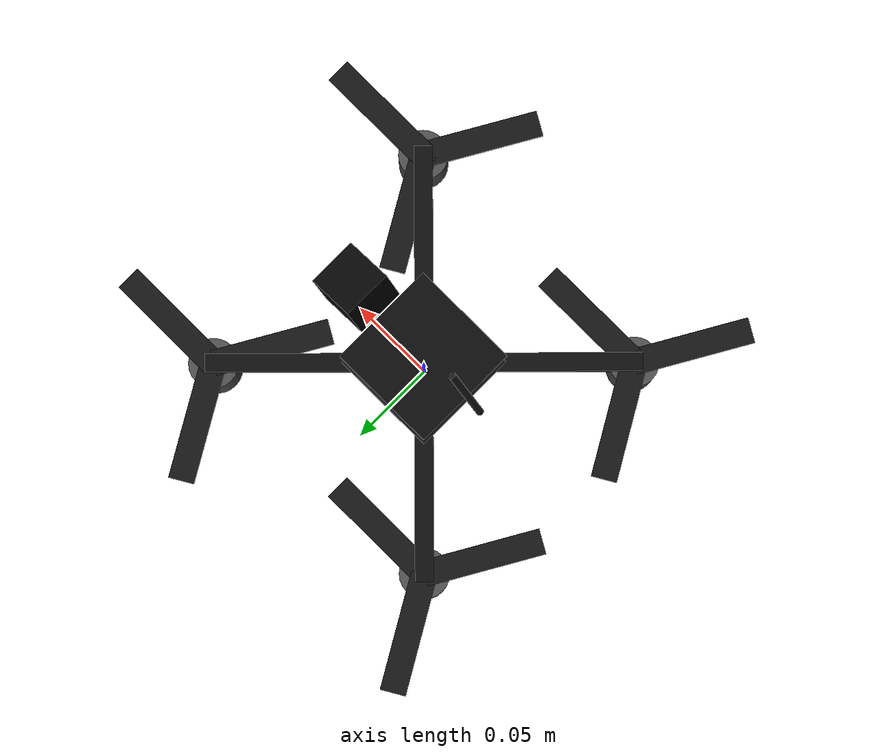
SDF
<?xml version="1.0" encoding="UTF-8"?>
<sdf version='1.9'>
  <model name='fpv5'>
    <pose>0 0 0.05000 0 0 0</pose>
    <self_collide>false</self_collide>
    <static>false</static>
    <link name="base_link">
      <inertial>
        <mass>0.172000</mass>
        <inertia>
          <ixx>3.321e-04</ixx>
          <ixy>0</ixy>
          <ixz>0</ixz>
          <iyy>3.321e-04</iyy>
          <iyz>0</iyz>
          <izz>6.348e-04</izz>
        </inertia>
      </inertial>
      <gravity>true</gravity>
      <velocity_decay/>

      <visual name="arm0">
        <pose>0.03977 -0.03977 0.00000 0.00000 0.00000 -0.78540</pose>
        <geometry>
          <box><size>0.12150 0.01000 0.00500</size></box>
        </geometry>
        <material><ambient>0.02 0.02 0.02 1</ambient><diffuse>0.05 0.05 0.05 1</diffuse></material>
      </visual>
      <collision name="arm0_collision">
        <pose>0.03977 -0.03977 0.00000 0.00000 0.00000 -0.78540</pose>
        <geometry>
          <box><size>0.12150 0.01000 0.00500</size></box>
        </geometry>
      </collision>
      <visual name="arm1">
        <pose>-0.03977 0.03977 0.00000 0.00000 0.00000 2.35619</pose>
        <geometry>
          <box><size>0.12150 0.01000 0.00500</size></box>
        </geometry>
        <material><ambient>0.02 0.02 0.02 1</ambient><diffuse>0.05 0.05 0.05 1</diffuse></material>
      </visual>
      <collision name="arm1_collision">
        <pose>-0.03977 0.03977 0.00000 0.00000 0.00000 2.35619</pose>
        <geometry>
          <box><size>0.12150 0.01000 0.00500</size></box>
        </geometry>
      </collision>
      <visual name="arm2">
        <pose>0.03977 0.03977 0.00000 0.00000 0.00000 0.78540</pose>
        <geometry>
          <box><size>0.12150 0.01000 0.00500</size></box>
        </geometry>
        <material><ambient>0.02 0.02 0.02 1</ambient><diffuse>0.05 0.05 0.05 1</diffuse></material>
      </visual>
      <collision name="arm2_collision">
        <pose>0.03977 0.03977 0.00000 0.00000 0.00000 0.78540</pose>
        <geometry>
          <box><size>0.12150 0.01000 0.00500</size></box>
        </geometry>
      </collision>
      <visual name="arm3">
        <pose>-0.03977 -0.03977 0.00000 0.00000 0.00000 -2.35619</pose>
        <geometry>
          <box><size>0.12150 0.01000 0.00500</size></box>
        </geometry>
        <material><ambient>0.02 0.02 0.02 1</ambient><diffuse>0.05 0.05 0.05 1</diffuse></material>
      </visual>
      <collision name="arm3_collision">
        <pose>-0.03977 -0.03977 0.00000 0.00000 0.00000 -2.35619</pose>
        <geometry>
          <box><size>0.12150 0.01000 0.00500</size></box>
        </geometry>
      </collision>

      <visual name="standoff_0">
        <pose>0.02400 0.02400 0.01750 0.00000 0.00000 0.00000</pose>
        <geometry>
          <cylinder><radius>0.00250</radius><length>0.02900</length></cylinder>
        </geometry>
        <material><ambient>0.6 0.6 0.6 1</ambient><diffuse>0.7 0.7 0.7 1</diffuse></material>
      </visual>
      <visual name="standoff_1">
        <pose>0.02400 -0.02400 0.01750 0.00000 0.00000 0.00000</pose>
        <geometry>
          <cylinder><radius>0.00250</radius><length>0.02900</length></cylinder>
        </geometry>
        <material><ambient>0.6 0.6 0.6 1</ambient><diffuse>0.7 0.7 0.7 1</diffuse></material>
      </visual>
      <visual name="standoff_2">
        <pose>-0.02400 0.02400 0.01750 0.00000 0.00000 0.00000</pose>
        <geometry>
          <cylinder><radius>0.00250</radius><length>0.02900</length></cylinder>
        </geometry>
        <material><ambient>0.6 0.6 0.6 1</ambient><diffuse>0.7 0.7 0.7 1</diffuse></material>
      </visual>
      <visual name="standoff_3">
        <pose>-0.02400 -0.02400 0.01750 0.00000 0.00000 0.00000</pose>
        <geometry>
          <cylinder><radius>0.00250</radius><length>0.02900</length></cylinder>
        </geometry>
        <material><ambient>0.6 0.6 0.6 1</ambient><diffuse>0.7 0.7 0.7 1</diffuse></material>
      </visual>
      <visual name="bottom_plate">
        <pose>0.00000 0.00000 0.00150 0.00000 0.00000 0.00000</pose>
        <geometry>
          <box><size>0.06200 0.06200 0.00300</size></box>
        </geometry>
        <material><ambient>0.02 0.02 0.02 1</ambient><diffuse>0.04 0.04 0.04 1</diffuse></material>
      </visual>
      <visual name="top_plate">
        <pose>0.00000 0.00000 0.03200 0.00000 0.00000 0.00000</pose>
        <geometry>
          <box><size>0.06200 0.06200 0.00300</size></box>
        </geometry>
        <material><ambient>0.02 0.02 0.02 1</ambient><diffuse>0.04 0.04 0.04 1</diffuse></material>
      </visual>
      <visual name="camera_pod">
        <pose>0.04900 0.00000 0.04500 0.00000 0.34907 0.00000</pose>
        <geometry>
          <box><size>0.02800 0.02800 0.02600</size></box>
        </geometry>
        <material><ambient>0.02 0.02 0.02 1</ambient><diffuse>0.02 0.02 0.02 1</diffuse></material>
      </visual>
      <visual name="vtx_antenna">
        <pose>-0.03100 0.00000 0.05700 0.00000 0.43633 0.00000</pose>
        <geometry>
          <cylinder><radius>0.00200</radius><length>0.05000</length></cylinder>
        </geometry>
        <material><ambient>0.05 0.05 0.05 1</ambient><diffuse>0.1 0.1 0.1 1</diffuse></material>
      </visual>
      <collision name="stack_collision">
        <pose>0.00000 0.00000 0.01600 0.00000 0.00000 0.00000</pose>
        <geometry>
          <box><size>0.06200 0.06200 0.03200</size></box>
        </geometry>
        <surface>
          <contact><ode><min_depth>0.001</min_depth><max_vel>0</max_vel></ode></contact>
          <friction><ode/></friction>
        </surface>
      </collision>
      <sensor name="air_pressure_sensor" type="air_pressure">
        <always_on>1</always_on>
        <update_rate>50</update_rate>
        <air_pressure><pressure><noise type="gaussian"><mean>0</mean><stddev>0.01</stddev></noise></pressure></air_pressure>
      </sensor>
      <sensor name="imu_sensor" type="imu">
        <always_on>1</always_on>
        <update_rate>250</update_rate>
        <imu>
          <angular_velocity>
            <x><noise type="gaussian"><mean>0</mean><stddev>0.00018665</stddev><dynamic_bias_stddev>3.8785e-05</dynamic_bias_stddev><dynamic_bias_correlation_time>1000</dynamic_bias_correlation_time></noise></x>
            <y><noise type="gaussian"><mean>0</mean><stddev>0.00018665</stddev><dynamic_bias_stddev>3.8785e-05</dynamic_bias_stddev><dynamic_bias_correlation_time>1000</dynamic_bias_correlation_time></noise></y>
            <z><noise type="gaussian"><mean>0</mean><stddev>0.00018665</stddev><dynamic_bias_stddev>3.8785e-05</dynamic_bias_stddev><dynamic_bias_correlation_time>1000</dynamic_bias_correlation_time></noise></z>
          </angular_velocity>
          <linear_acceleration>
            <x><noise type="gaussian"><mean>0</mean><stddev>0.00186</stddev><dynamic_bias_stddev>0.006</dynamic_bias_stddev><dynamic_bias_correlation_time>300</dynamic_bias_correlation_time></noise></x>
            <y><noise type="gaussian"><mean>0</mean><stddev>0.00186</stddev><dynamic_bias_stddev>0.006</dynamic_bias_stddev><dynamic_bias_correlation_time>300</dynamic_bias_correlation_time></noise></y>
            <z><noise type="gaussian"><mean>0</mean><stddev>0.00186</stddev><dynamic_bias_stddev>0.006</dynamic_bias_stddev><dynamic_bias_correlation_time>300</dynamic_bias_correlation_time></noise></z>
          </linear_acceleration>
        </imu>
      </sensor>
      <sensor name="navsat_sensor" type="navsat">
        <always_on>1</always_on>
        <update_rate>30</update_rate>
      </sensor>
      <sensor name="camera" type="camera">
        <pose>0.04900 0.00000 0.04500 0.00000 0.34907 0.00000</pose>
        <camera>
          <horizontal_fov>1.57080</horizontal_fov>
          <image><width>640</width><height>480</height></image>
          <clip><near>0.05</near><far>100</far></clip>
        </camera>
        <always_on>1</always_on>
        <update_rate>30</update_rate>
        <visualize>true</visualize>
        <topic>camera</topic>
      </sensor>
      <sensor name="depth_camera" type="depth_camera">
        <pose>0.04900 0.00000 0.04500 0.00000 0.34907 0.00000</pose>
        <camera>
          <horizontal_fov>1.57080</horizontal_fov>
          <image><width>640</width><height>480</height><format>R_FLOAT32</format></image>
          <clip><near>0.1</near><far>20.0</far></clip>
        </camera>
        <always_on>1</always_on>
        <update_rate>30</update_rate>
        <visualize>false</visualize>
        <topic>depth_camera</topic>
      </sensor>
      <sensor name="segmentation_camera" type="segmentation">
        <pose>0.04900 0.00000 0.04500 0.00000 0.34907 0.00000</pose>
        <camera>
          <segmentation_type>semantic</segmentation_type>
          <horizontal_fov>1.57080</horizontal_fov>
          <image><width>640</width><height>480</height></image>
          <clip><near>0.05</near><far>100</far></clip>
        </camera>
        <always_on>1</always_on>
        <update_rate>30</update_rate>
        <visualize>false</visualize>
        <topic>semantic_segmentation</topic>
      </sensor>
    </link>

    <link name="rotor_0">
      <gravity>true</gravity>
      <self_collide>false</self_collide>
      <velocity_decay/>
      <pose>0.07955 -0.07955 0.00000 0.00000 0.00000 0.00000</pose>
      <inertial>
        <mass>0.032000</mass>
        <inertia>
          <ixx>4.507e-05</ixx>
          <iyy>4.507e-05</iyy>
          <izz>6.760e-05</izz>
        </inertia>
      </inertial>
      <visual name="rotor_0_motor">
        <pose>0 0 -0.01500 0 0 0</pose>
        <geometry>
          <cylinder><radius>0.01350</radius><length>0.03000</length></cylinder>
        </geometry>
        <material>
          <ambient>0.15 0.15 0.15 1</ambient>
          <diffuse>0.3 0.3 0.3 1</diffuse>
          <specular>0.6 0.6 0.6 1</specular>
        </material>
      </visual>

      <visual name="rotor_0_blade0">
        <pose>0.03250 0.00000 0.00000 0.00000 0.00000 0.00000</pose>
        <geometry>
          <box><size>0.06500 0.01400 0.00180</size></box>
        </geometry>
        <material><ambient>0.05 0.05 0.05 1</ambient><diffuse>0.08 0.08 0.08 1</diffuse></material>
      </visual>
      <visual name="rotor_0_blade1">
        <pose>-0.01625 0.02815 0.00000 0.00000 0.00000 2.09440</pose>
        <geometry>
          <box><size>0.06500 0.01400 0.00180</size></box>
        </geometry>
        <material><ambient>0.05 0.05 0.05 1</ambient><diffuse>0.08 0.08 0.08 1</diffuse></material>
      </visual>
      <visual name="rotor_0_blade2">
        <pose>-0.01625 -0.02815 0.00000 0.00000 0.00000 4.18879</pose>
        <geometry>
          <box><size>0.06500 0.01400 0.00180</size></box>
        </geometry>
        <material><ambient>0.05 0.05 0.05 1</ambient><diffuse>0.08 0.08 0.08 1</diffuse></material>
      </visual>
      <collision name="rotor_0_collision">
        <pose>0 0 0 0 0 0</pose>
        <geometry>
          <box><size>0.13000 0.02800 0.00360</size></box>
        </geometry>
      </collision>
    </link>
    <joint name="rotor_0_joint" type="revolute">
      <parent>base_link</parent>
      <child>rotor_0</child>
      <axis>
        <xyz>0 0 1</xyz>
        <limit><lower>-1e+16</lower><upper>1e+16</upper></limit>
        <dynamics><spring_reference>0</spring_reference><spring_stiffness>0</spring_stiffness></dynamics>
      </axis>
    </joint>
    <link name="rotor_1">
      <gravity>true</gravity>
      <self_collide>false</self_collide>
      <velocity_decay/>
      <pose>-0.07955 0.07955 0.00000 0.00000 0.00000 0.00000</pose>
      <inertial>
        <mass>0.032000</mass>
        <inertia>
          <ixx>4.507e-05</ixx>
          <iyy>4.507e-05</iyy>
          <izz>6.760e-05</izz>
        </inertia>
      </inertial>
      <visual name="rotor_1_motor">
        <pose>0 0 -0.01500 0 0 0</pose>
        <geometry>
          <cylinder><radius>0.01350</radius><length>0.03000</length></cylinder>
        </geometry>
        <material>
          <ambient>0.15 0.15 0.15 1</ambient>
          <diffuse>0.3 0.3 0.3 1</diffuse>
          <specular>0.6 0.6 0.6 1</specular>
        </material>
      </visual>

      <visual name="rotor_1_blade0">
        <pose>0.03250 0.00000 0.00000 0.00000 0.00000 0.00000</pose>
        <geometry>
          <box><size>0.06500 0.01400 0.00180</size></box>
        </geometry>
        <material><ambient>0.05 0.05 0.05 1</ambient><diffuse>0.08 0.08 0.08 1</diffuse></material>
      </visual>
      <visual name="rotor_1_blade1">
        <pose>-0.01625 0.02815 0.00000 0.00000 0.00000 2.09440</pose>
        <geometry>
          <box><size>0.06500 0.01400 0.00180</size></box>
        </geometry>
        <material><ambient>0.05 0.05 0.05 1</ambient><diffuse>0.08 0.08 0.08 1</diffuse></material>
      </visual>
      <visual name="rotor_1_blade2">
        <pose>-0.01625 -0.02815 0.00000 0.00000 0.00000 4.18879</pose>
        <geometry>
          <box><size>0.06500 0.01400 0.00180</size></box>
        </geometry>
        <material><ambient>0.05 0.05 0.05 1</ambient><diffuse>0.08 0.08 0.08 1</diffuse></material>
      </visual>
      <collision name="rotor_1_collision">
        <pose>0 0 0 0 0 0</pose>
        <geometry>
          <box><size>0.13000 0.02800 0.00360</size></box>
        </geometry>
      </collision>
    </link>
    <joint name="rotor_1_joint" type="revolute">
      <parent>base_link</parent>
      <child>rotor_1</child>
      <axis>
        <xyz>0 0 1</xyz>
        <limit><lower>-1e+16</lower><upper>1e+16</upper></limit>
        <dynamics><spring_reference>0</spring_reference><spring_stiffness>0</spring_stiffness></dynamics>
      </axis>
    </joint>
    <link name="rotor_2">
      <gravity>true</gravity>
      <self_collide>false</self_collide>
      <velocity_decay/>
      <pose>0.07955 0.07955 0.00000 0.00000 0.00000 0.00000</pose>
      <inertial>
        <mass>0.032000</mass>
        <inertia>
          <ixx>4.507e-05</ixx>
          <iyy>4.507e-05</iyy>
          <izz>6.760e-05</izz>
        </inertia>
      </inertial>
      <visual name="rotor_2_motor">
        <pose>0 0 -0.01500 0 0 0</pose>
        <geometry>
          <cylinder><radius>0.01350</radius><length>0.03000</length></cylinder>
        </geometry>
        <material>
          <ambient>0.15 0.15 0.15 1</ambient>
          <diffuse>0.3 0.3 0.3 1</diffuse>
          <specular>0.6 0.6 0.6 1</specular>
        </material>
      </visual>

      <visual name="rotor_2_blade0">
        <pose>0.03250 0.00000 0.00000 0.00000 0.00000 0.00000</pose>
        <geometry>
          <box><size>0.06500 0.01400 0.00180</size></box>
        </geometry>
        <material><ambient>0.05 0.05 0.05 1</ambient><diffuse>0.08 0.08 0.08 1</diffuse></material>
      </visual>
      <visual name="rotor_2_blade1">
        <pose>-0.01625 0.02815 0.00000 0.00000 0.00000 2.09440</pose>
        <geometry>
          <box><size>0.06500 0.01400 0.00180</size></box>
        </geometry>
        <material><ambient>0.05 0.05 0.05 1</ambient><diffuse>0.08 0.08 0.08 1</diffuse></material>
      </visual>
      <visual name="rotor_2_blade2">
        <pose>-0.01625 -0.02815 0.00000 0.00000 0.00000 4.18879</pose>
        <geometry>
          <box><size>0.06500 0.01400 0.00180</size></box>
        </geometry>
        <material><ambient>0.05 0.05 0.05 1</ambient><diffuse>0.08 0.08 0.08 1</diffuse></material>
      </visual>
      <collision name="rotor_2_collision">
        <pose>0 0 0 0 0 0</pose>
        <geometry>
          <box><size>0.13000 0.02800 0.00360</size></box>
        </geometry>
      </collision>
    </link>
    <joint name="rotor_2_joint" type="revolute">
      <parent>base_link</parent>
      <child>rotor_2</child>
      <axis>
        <xyz>0 0 1</xyz>
        <limit><lower>-1e+16</lower><upper>1e+16</upper></limit>
        <dynamics><spring_reference>0</spring_reference><spring_stiffness>0</spring_stiffness></dynamics>
      </axis>
    </joint>
    <link name="rotor_3">
      <gravity>true</gravity>
      <self_collide>false</self_collide>
      <velocity_decay/>
      <pose>-0.07955 -0.07955 0.00000 0.00000 0.00000 0.00000</pose>
      <inertial>
        <mass>0.032000</mass>
        <inertia>
          <ixx>4.507e-05</ixx>
          <iyy>4.507e-05</iyy>
          <izz>6.760e-05</izz>
        </inertia>
      </inertial>
      <visual name="rotor_3_motor">
        <pose>0 0 -0.01500 0 0 0</pose>
        <geometry>
          <cylinder><radius>0.01350</radius><length>0.03000</length></cylinder>
        </geometry>
        <material>
          <ambient>0.15 0.15 0.15 1</ambient>
          <diffuse>0.3 0.3 0.3 1</diffuse>
          <specular>0.6 0.6 0.6 1</specular>
        </material>
      </visual>

      <visual name="rotor_3_blade0">
        <pose>0.03250 0.00000 0.00000 0.00000 0.00000 0.00000</pose>
        <geometry>
          <box><size>0.06500 0.01400 0.00180</size></box>
        </geometry>
        <material><ambient>0.05 0.05 0.05 1</ambient><diffuse>0.08 0.08 0.08 1</diffuse></material>
      </visual>
      <visual name="rotor_3_blade1">
        <pose>-0.01625 0.02815 0.00000 0.00000 0.00000 2.09440</pose>
        <geometry>
          <box><size>0.06500 0.01400 0.00180</size></box>
        </geometry>
        <material><ambient>0.05 0.05 0.05 1</ambient><diffuse>0.08 0.08 0.08 1</diffuse></material>
      </visual>
      <visual name="rotor_3_blade2">
        <pose>-0.01625 -0.02815 0.00000 0.00000 0.00000 4.18879</pose>
        <geometry>
          <box><size>0.06500 0.01400 0.00180</size></box>
        </geometry>
        <material><ambient>0.05 0.05 0.05 1</ambient><diffuse>0.08 0.08 0.08 1</diffuse></material>
      </visual>
      <collision name="rotor_3_collision">
        <pose>0 0 0 0 0 0</pose>
        <geometry>
          <box><size>0.13000 0.02800 0.00360</size></box>
        </geometry>
      </collision>
    </link>
    <joint name="rotor_3_joint" type="revolute">
      <parent>base_link</parent>
      <child>rotor_3</child>
      <axis>
        <xyz>0 0 1</xyz>
        <limit><lower>-1e+16</lower><upper>1e+16</upper></limit>
        <dynamics><spring_reference>0</spring_reference><spring_stiffness>0</spring_stiffness></dynamics>
      </axis>
    </joint>

    <plugin filename="gz-sim-multicopter-motor-model-system" name="gz::sim::systems::MulticopterMotorModel">
      <jointName>rotor_0_joint</jointName>
      <linkName>rotor_0</linkName>
      <turningDirection>ccw</turningDirection>
      <timeConstantUp>0.01</timeConstantUp>
      <timeConstantDown>0.02</timeConstantDown>
      <maxRotVelocity>3300.0</maxRotVelocity>
      <motorConstant>6.427916e-07</motorConstant>
      <momentConstant>0.025</momentConstant>
      <commandSubTopic>command/motor_speed</commandSubTopic>
      <motorNumber>0</motorNumber>
      <rotorDragCoefficient>1.251e-05</rotorDragCoefficient>
      <rollingMomentCoefficient>1.552e-07</rollingMomentCoefficient>
      <rotorVelocitySlowdownSim>10</rotorVelocitySlowdownSim>
      <motorType>velocity</motorType>
    </plugin>
    <plugin filename="gz-sim-multicopter-motor-model-system" name="gz::sim::systems::MulticopterMotorModel">
      <jointName>rotor_1_joint</jointName>
      <linkName>rotor_1</linkName>
      <turningDirection>ccw</turningDirection>
      <timeConstantUp>0.01</timeConstantUp>
      <timeConstantDown>0.02</timeConstantDown>
      <maxRotVelocity>3300.0</maxRotVelocity>
      <motorConstant>6.427916e-07</motorConstant>
      <momentConstant>0.025</momentConstant>
      <commandSubTopic>command/motor_speed</commandSubTopic>
      <motorNumber>1</motorNumber>
      <rotorDragCoefficient>1.251e-05</rotorDragCoefficient>
      <rollingMomentCoefficient>1.552e-07</rollingMomentCoefficient>
      <rotorVelocitySlowdownSim>10</rotorVelocitySlowdownSim>
      <motorType>velocity</motorType>
    </plugin>
    <plugin filename="gz-sim-multicopter-motor-model-system" name="gz::sim::systems::MulticopterMotorModel">
      <jointName>rotor_2_joint</jointName>
      <linkName>rotor_2</linkName>
      <turningDirection>cw</turningDirection>
      <timeConstantUp>0.01</timeConstantUp>
      <timeConstantDown>0.02</timeConstantDown>
      <maxRotVelocity>3300.0</maxRotVelocity>
      <motorConstant>6.427916e-07</motorConstant>
      <momentConstant>0.025</momentConstant>
      <commandSubTopic>command/motor_speed</commandSubTopic>
      <motorNumber>2</motorNumber>
      <rotorDragCoefficient>1.251e-05</rotorDragCoefficient>
      <rollingMomentCoefficient>1.552e-07</rollingMomentCoefficient>
      <rotorVelocitySlowdownSim>10</rotorVelocitySlowdownSim>
      <motorType>velocity</motorType>
    </plugin>
    <plugin filename="gz-sim-multicopter-motor-model-system" name="gz::sim::systems::MulticopterMotorModel">
      <jointName>rotor_3_joint</jointName>
      <linkName>rotor_3</linkName>
      <turningDirection>cw</turningDirection>
      <timeConstantUp>0.01</timeConstantUp>
      <timeConstantDown>0.02</timeConstantDown>
      <maxRotVelocity>3300.0</maxRotVelocity>
      <motorConstant>6.427916e-07</motorConstant>
      <momentConstant>0.025</momentConstant>
      <commandSubTopic>command/motor_speed</commandSubTopic>
      <motorNumber>3</motorNumber>
      <rotorDragCoefficient>1.251e-05</rotorDragCoefficient>
      <rollingMomentCoefficient>1.552e-07</rollingMomentCoefficient>
      <rotorVelocitySlowdownSim>10</rotorVelocitySlowdownSim>
      <motorType>velocity</motorType>
    </plugin>
    <plugin filename="gz-sim-odometry-publisher-system" name="gz::sim::systems::OdometryPublisher">
      <odom_frame>world</odom_frame>
      <robot_base_frame>base_link</robot_base_frame>
      <odom_publish_frequency>30</odom_publish_frequency>
      <dimensions>3</dimensions>
    </plugin>
  </model>
</sdf>
